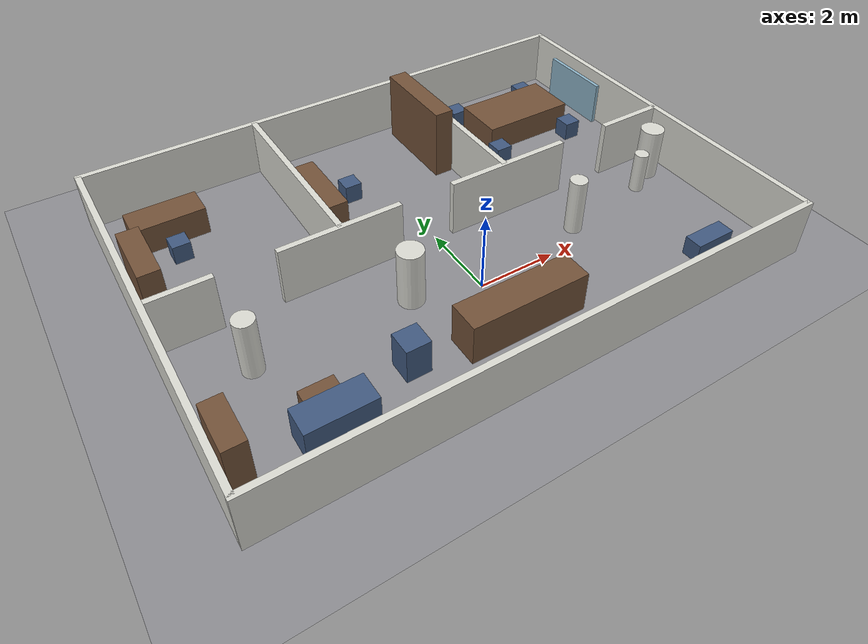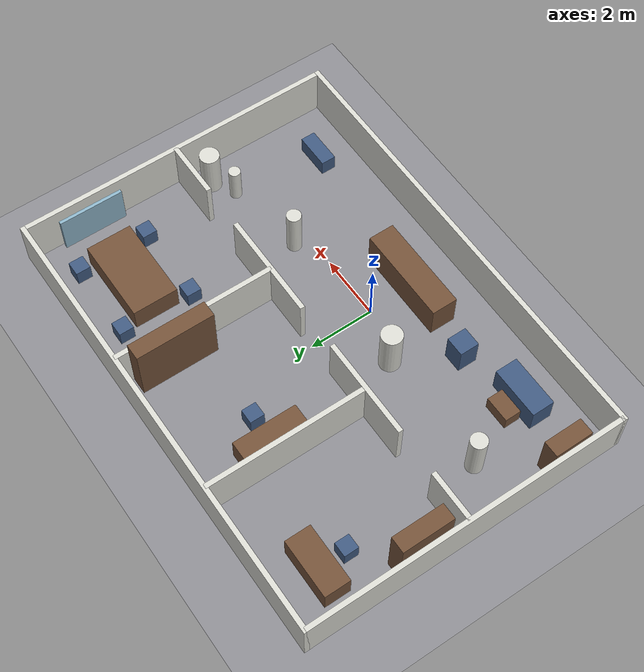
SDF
<sdf version='1.9'>
  <world name='default'>

    <plugin filename="gz-sim-physics-system" name="gz::sim::systems::Physics"/>
    <plugin filename="gz-sim-scene-broadcaster-system" name="gz::sim::systems::SceneBroadcaster"/>
    <plugin filename="gz-sim-user-commands-system" name="gz::sim::systems::UserCommands"/>
    <plugin filename="gz-sim-sensors-system" name="gz::sim::systems::Sensors">
      <render_engine>ogre2</render_engine>
    </plugin>
    <plugin filename="gz-sim-contact-system" name="gz::sim::systems::Contact"/>
    <plugin filename="gz-sim-imu-system" name="gz::sim::systems::Imu"/>

    <gravity>0 0 -9.8</gravity>
    <physics name='default_physics' type='ode'>
      <max_step_size>0.001</max_step_size>
      <real_time_factor>1.0</real_time_factor>
      <real_time_update_rate>1000</real_time_update_rate>
    </physics>

    <scene>
      <ambient>0.55 0.55 0.55 1</ambient>
      <background>0.75 0.80 0.85 1</background>
      <shadows>true</shadows>
    </scene>

    <light type='directional' name='sun'>
      <cast_shadows>true</cast_shadows>
      <pose>0 0 10 0 0 0</pose>
      <diffuse>0.9 0.9 0.9 1</diffuse>
      <specular>0.2 0.2 0.2 1</specular>
      <attenuation>
        <range>1000</range>
        <constant>0.9</constant>
        <linear>0.01</linear>
        <quadratic>0.001</quadratic>
      </attenuation>
      <direction>-0.4 0.3 -0.9</direction>
    </light>

    <model name='ground_plane'>
      <static>true</static>
      <link name='link'>
        <collision name='collision'>
          <geometry><plane><normal>0 0 1</normal><size>100 100</size></plane></geometry>
        </collision>
        <visual name='visual'>
          <geometry><plane><normal>0 0 1</normal><size>100 100</size></plane></geometry>
          <material>
            <ambient>0.40 0.40 0.42 1</ambient>
            <diffuse>0.55 0.55 0.57 1</diffuse>
            <specular>0.05 0.05 0.05 1</specular>
          </material>
        </visual>
      </link>
    </model>

    <model name='wall_south'>
      <static>true</static>
      <pose>0.0 -3.0 0.7500 0 0 0</pose>
      <link name='link'>
        <collision name='collision'>
          <geometry><box><size>14.15 0.15 1.5</size></box></geometry>
        </collision>
        <visual name='visual'>
          <geometry><box><size>14.15 0.15 1.5</size></box></geometry>
          <material>
            <ambient>0.425 0.425 0.410 1</ambient>
            <diffuse>0.850 0.850 0.820 1</diffuse>
            <specular>0.1 0.1 0.1 1</specular>
          </material>
        </visual>
      </link>
    </model>
    <model name='wall_north'>
      <static>true</static>
      <pose>0.0 7.0 0.7500 0 0 0</pose>
      <link name='link'>
        <collision name='collision'>
          <geometry><box><size>14.15 0.15 1.5</size></box></geometry>
        </collision>
        <visual name='visual'>
          <geometry><box><size>14.15 0.15 1.5</size></box></geometry>
          <material>
            <ambient>0.425 0.425 0.410 1</ambient>
            <diffuse>0.850 0.850 0.820 1</diffuse>
            <specular>0.1 0.1 0.1 1</specular>
          </material>
        </visual>
      </link>
    </model>
    <model name='wall_west'>
      <static>true</static>
      <pose>-7.0 2.0 0.7500 0 0 0</pose>
      <link name='link'>
        <collision name='collision'>
          <geometry><box><size>0.15 10.0 1.5</size></box></geometry>
        </collision>
        <visual name='visual'>
          <geometry><box><size>0.15 10.0 1.5</size></box></geometry>
          <material>
            <ambient>0.425 0.425 0.410 1</ambient>
            <diffuse>0.850 0.850 0.820 1</diffuse>
            <specular>0.1 0.1 0.1 1</specular>
          </material>
        </visual>
      </link>
    </model>
    <model name='wall_east'>
      <static>true</static>
      <pose>7.0 2.0 0.7500 0 0 0</pose>
      <link name='link'>
        <collision name='collision'>
          <geometry><box><size>0.15 10.0 1.5</size></box></geometry>
        </collision>
        <visual name='visual'>
          <geometry><box><size>0.15 10.0 1.5</size></box></geometry>
          <material>
            <ambient>0.425 0.425 0.410 1</ambient>
            <diffuse>0.850 0.850 0.820 1</diffuse>
            <specular>0.1 0.1 0.1 1</specular>
          </material>
        </visual>
      </link>
    </model>
    <model name='wall_partition_0'>
      <static>true</static>
      <pose>-6.225 2.0 0.7500 0 0 0</pose>
      <link name='link'>
        <collision name='collision'>
          <geometry><box><size>1.5499999999999998 0.15 1.5</size></box></geometry>
        </collision>
        <visual name='visual'>
          <geometry><box><size>1.5499999999999998 0.15 1.5</size></box></geometry>
          <material>
            <ambient>0.425 0.425 0.410 1</ambient>
            <diffuse>0.850 0.850 0.820 1</diffuse>
            <specular>0.1 0.1 0.1 1</specular>
          </material>
        </visual>
      </link>
    </model>
    <model name='wall_partition_1'>
      <static>true</static>
      <pose>-2.5 2.0 0.7500 0 0 0</pose>
      <link name='link'>
        <collision name='collision'>
          <geometry><box><size>3.0999999999999996 0.15 1.5</size></box></geometry>
        </collision>
        <visual name='visual'>
          <geometry><box><size>3.0999999999999996 0.15 1.5</size></box></geometry>
          <material>
            <ambient>0.425 0.425 0.410 1</ambient>
            <diffuse>0.850 0.850 0.820 1</diffuse>
            <specular>0.1 0.1 0.1 1</specular>
          </material>
        </visual>
      </link>
    </model>
    <model name='wall_partition_2'>
      <static>true</static>
      <pose>2.125 2.0 0.7500 0 0 0</pose>
      <link name='link'>
        <collision name='collision'>
          <geometry><box><size>3.3499999999999996 0.15 1.5</size></box></geometry>
        </collision>
        <visual name='visual'>
          <geometry><box><size>3.3499999999999996 0.15 1.5</size></box></geometry>
          <material>
            <ambient>0.425 0.425 0.410 1</ambient>
            <diffuse>0.850 0.850 0.820 1</diffuse>
            <specular>0.1 0.1 0.1 1</specular>
          </material>
        </visual>
      </link>
    </model>
    <model name='wall_partition_3'>
      <static>true</static>
      <pose>6.1 2.0 0.7500 0 0 0</pose>
      <link name='link'>
        <collision name='collision'>
          <geometry><box><size>1.7999999999999998 0.15 1.5</size></box></geometry>
        </collision>
        <visual name='visual'>
          <geometry><box><size>1.7999999999999998 0.15 1.5</size></box></geometry>
          <material>
            <ambient>0.425 0.425 0.410 1</ambient>
            <diffuse>0.850 0.850 0.820 1</diffuse>
            <specular>0.1 0.1 0.1 1</specular>
          </material>
        </visual>
      </link>
    </model>
    <model name='wall_div_office'>
      <static>true</static>
      <pose>-2.5 4.5 0.7500 0 0 0</pose>
      <link name='link'>
        <collision name='collision'>
          <geometry><box><size>0.15 5.0 1.5</size></box></geometry>
        </collision>
        <visual name='visual'>
          <geometry><box><size>0.15 5.0 1.5</size></box></geometry>
          <material>
            <ambient>0.425 0.425 0.410 1</ambient>
            <diffuse>0.850 0.850 0.820 1</diffuse>
            <specular>0.1 0.1 0.1 1</specular>
          </material>
        </visual>
      </link>
    </model>
    <model name='wall_div_meeting'>
      <static>true</static>
      <pose>2.0 4.5 0.7500 0 0 0</pose>
      <link name='link'>
        <collision name='collision'>
          <geometry><box><size>0.15 5.0 1.5</size></box></geometry>
        </collision>
        <visual name='visual'>
          <geometry><box><size>0.15 5.0 1.5</size></box></geometry>
          <material>
            <ambient>0.425 0.425 0.410 1</ambient>
            <diffuse>0.850 0.850 0.820 1</diffuse>
            <specular>0.1 0.1 0.1 1</specular>
          </material>
        </visual>
      </link>
    </model>
    <model name='reception_desk'>
      <static>true</static>
      <pose>0.0 -1.4 0.5250 0 0 0</pose>
      <link name='link'>
        <collision name='collision'>
          <geometry><box><size>3.0 0.8 1.05</size></box></geometry>
        </collision>
        <visual name='visual'>
          <geometry><box><size>3.0 0.8 1.05</size></box></geometry>
          <material>
            <ambient>0.225 0.160 0.110 1</ambient>
            <diffuse>0.450 0.320 0.220 1</diffuse>
            <specular>0.1 0.1 0.1 1</specular>
          </material>
        </visual>
      </link>
    </model>
    <model name='sofa_left'>
      <static>true</static>
      <pose>-4.6 -1.75 0.4000 0 0 0</pose>
      <link name='link'>
        <collision name='collision'>
          <geometry><box><size>1.6 0.7 0.8</size></box></geometry>
        </collision>
        <visual name='visual'>
          <geometry><box><size>1.6 0.7 0.8</size></box></geometry>
          <material>
            <ambient>0.125 0.175 0.250 1</ambient>
            <diffuse>0.250 0.350 0.500 1</diffuse>
            <specular>0.1 0.1 0.1 1</specular>
          </material>
        </visual>
      </link>
    </model>
    <model name='coffee_table'>
      <static>true</static>
      <pose>-4.6 -1.1 0.2250 0 0 0</pose>
      <link name='link'>
        <collision name='collision'>
          <geometry><box><size>0.8 0.5 0.45</size></box></geometry>
        </collision>
        <visual name='visual'>
          <geometry><box><size>0.8 0.5 0.45</size></box></geometry>
          <material>
            <ambient>0.225 0.160 0.110 1</ambient>
            <diffuse>0.450 0.320 0.220 1</diffuse>
            <specular>0.1 0.1 0.1 1</specular>
          </material>
        </visual>
      </link>
    </model>
    <model name='bench_right'>
      <static>true</static>
      <pose>5.3 -1.85 0.2500 0 0 0</pose>
      <link name='link'>
        <collision name='collision'>
          <geometry><box><size>1.1 0.45 0.5</size></box></geometry>
        </collision>
        <visual name='visual'>
          <geometry><box><size>1.1 0.45 0.5</size></box></geometry>
          <material>
            <ambient>0.125 0.175 0.250 1</ambient>
            <diffuse>0.250 0.350 0.500 1</diffuse>
            <specular>0.1 0.1 0.1 1</specular>
          </material>
        </visual>
      </link>
    </model>
    <model name='planter_mid'>
      <static>true</static>
      <pose>-2.6 -1.2 0.4500 0 0 0</pose>
      <link name='link'>
        <collision name='collision'>
          <geometry><box><size>0.6 0.6 0.9</size></box></geometry>
        </collision>
        <visual name='visual'>
          <geometry><box><size>0.6 0.6 0.9</size></box></geometry>
          <material>
            <ambient>0.125 0.175 0.250 1</ambient>
            <diffuse>0.250 0.350 0.500 1</diffuse>
            <specular>0.1 0.1 0.1 1</specular>
          </material>
        </visual>
      </link>
    </model>
    <model name='west_cabinet'>
      <static>true</static>
      <pose>-6.6 -1.5 0.7000 0 0 0</pose>
      <link name='link'>
        <collision name='collision'>
          <geometry><box><size>0.5 1.2 1.4</size></box></geometry>
        </collision>
        <visual name='visual'>
          <geometry><box><size>0.5 1.2 1.4</size></box></geometry>
          <material>
            <ambient>0.225 0.160 0.110 1</ambient>
            <diffuse>0.450 0.320 0.220 1</diffuse>
            <specular>0.1 0.1 0.1 1</specular>
          </material>
        </visual>
      </link>
    </model>
    <model name='office1_desk'>
      <static>true</static>
      <pose>-5.5 5.6 0.3750 0 0 0</pose>
      <link name='link'>
        <collision name='collision'>
          <geometry><box><size>1.8 0.8 0.75</size></box></geometry>
        </collision>
        <visual name='visual'>
          <geometry><box><size>1.8 0.8 0.75</size></box></geometry>
          <material>
            <ambient>0.225 0.160 0.110 1</ambient>
            <diffuse>0.450 0.320 0.220 1</diffuse>
            <specular>0.1 0.1 0.1 1</specular>
          </material>
        </visual>
      </link>
    </model>
    <model name='office1_cabinet'>
      <static>true</static>
      <pose>-6.6 3.2 0.9000 0 0 0</pose>
      <link name='link'>
        <collision name='collision'>
          <geometry><box><size>0.5 1.6 1.8</size></box></geometry>
        </collision>
        <visual name='visual'>
          <geometry><box><size>0.5 1.6 1.8</size></box></geometry>
          <material>
            <ambient>0.225 0.160 0.110 1</ambient>
            <diffuse>0.450 0.320 0.220 1</diffuse>
            <specular>0.1 0.1 0.1 1</specular>
          </material>
        </visual>
      </link>
    </model>
    <model name='office1_chair'>
      <static>true</static>
      <pose>-5.5 4.7 0.2500 0 0 0</pose>
      <link name='link'>
        <collision name='collision'>
          <geometry><box><size>0.45 0.45 0.5</size></box></geometry>
        </collision>
        <visual name='visual'>
          <geometry><box><size>0.45 0.45 0.5</size></box></geometry>
          <material>
            <ambient>0.125 0.175 0.250 1</ambient>
            <diffuse>0.250 0.350 0.500 1</diffuse>
            <specular>0.1 0.1 0.1 1</specular>
          </material>
        </visual>
      </link>
    </model>
    <model name='office2_desk'>
      <static>true</static>
      <pose>-1.95 4.6 0.3750 0 0 0</pose>
      <link name='link'>
        <collision name='collision'>
          <geometry><box><size>0.8 2.0 0.75</size></box></geometry>
        </collision>
        <visual name='visual'>
          <geometry><box><size>0.8 2.0 0.75</size></box></geometry>
          <material>
            <ambient>0.225 0.160 0.110 1</ambient>
            <diffuse>0.450 0.320 0.220 1</diffuse>
            <specular>0.1 0.1 0.1 1</specular>
          </material>
        </visual>
      </link>
    </model>
    <model name='office2_shelf'>
      <static>true</static>
      <pose>1.65 5.4 0.9500 0 0 0</pose>
      <link name='link'>
        <collision name='collision'>
          <geometry><box><size>0.5 2.4 1.9</size></box></geometry>
        </collision>
        <visual name='visual'>
          <geometry><box><size>0.5 2.4 1.9</size></box></geometry>
          <material>
            <ambient>0.225 0.160 0.110 1</ambient>
            <diffuse>0.450 0.320 0.220 1</diffuse>
            <specular>0.1 0.1 0.1 1</specular>
          </material>
        </visual>
      </link>
    </model>
    <model name='office2_chair'>
      <static>true</static>
      <pose>-1.0 4.6 0.2500 0 0 0</pose>
      <link name='link'>
        <collision name='collision'>
          <geometry><box><size>0.45 0.45 0.5</size></box></geometry>
        </collision>
        <visual name='visual'>
          <geometry><box><size>0.45 0.45 0.5</size></box></geometry>
          <material>
            <ambient>0.125 0.175 0.250 1</ambient>
            <diffuse>0.250 0.350 0.500 1</diffuse>
            <specular>0.1 0.1 0.1 1</specular>
          </material>
        </visual>
      </link>
    </model>
    <model name='meeting_table'>
      <static>true</static>
      <pose>4.6 5.0 0.3750 0 0 0</pose>
      <link name='link'>
        <collision name='collision'>
          <geometry><box><size>2.6 1.4 0.75</size></box></geometry>
        </collision>
        <visual name='visual'>
          <geometry><box><size>2.6 1.4 0.75</size></box></geometry>
          <material>
            <ambient>0.225 0.160 0.110 1</ambient>
            <diffuse>0.450 0.320 0.220 1</diffuse>
            <specular>0.1 0.1 0.1 1</specular>
          </material>
        </visual>
      </link>
    </model>
    <model name='meeting_chair_0'>
      <static>true</static>
      <pose>3.3 3.9 0.2500 0 0 0</pose>
      <link name='link'>
        <collision name='collision'>
          <geometry><box><size>0.45 0.45 0.5</size></box></geometry>
        </collision>
        <visual name='visual'>
          <geometry><box><size>0.45 0.45 0.5</size></box></geometry>
          <material>
            <ambient>0.125 0.175 0.250 1</ambient>
            <diffuse>0.250 0.350 0.500 1</diffuse>
            <specular>0.1 0.1 0.1 1</specular>
          </material>
        </visual>
      </link>
    </model>
    <model name='meeting_chair_1'>
      <static>true</static>
      <pose>5.7 3.9 0.2500 0 0 0</pose>
      <link name='link'>
        <collision name='collision'>
          <geometry><box><size>0.45 0.45 0.5</size></box></geometry>
        </collision>
        <visual name='visual'>
          <geometry><box><size>0.45 0.45 0.5</size></box></geometry>
          <material>
            <ambient>0.125 0.175 0.250 1</ambient>
            <diffuse>0.250 0.350 0.500 1</diffuse>
            <specular>0.1 0.1 0.1 1</specular>
          </material>
        </visual>
      </link>
    </model>
    <model name='meeting_chair_2'>
      <static>true</static>
      <pose>3.3 6.1 0.2500 0 0 0</pose>
      <link name='link'>
        <collision name='collision'>
          <geometry><box><size>0.45 0.45 0.5</size></box></geometry>
        </collision>
        <visual name='visual'>
          <geometry><box><size>0.45 0.45 0.5</size></box></geometry>
          <material>
            <ambient>0.125 0.175 0.250 1</ambient>
            <diffuse>0.250 0.350 0.500 1</diffuse>
            <specular>0.1 0.1 0.1 1</specular>
          </material>
        </visual>
      </link>
    </model>
    <model name='meeting_chair_3'>
      <static>true</static>
      <pose>5.7 6.1 0.2500 0 0 0</pose>
      <link name='link'>
        <collision name='collision'>
          <geometry><box><size>0.45 0.45 0.5</size></box></geometry>
        </collision>
        <visual name='visual'>
          <geometry><box><size>0.45 0.45 0.5</size></box></geometry>
          <material>
            <ambient>0.125 0.175 0.250 1</ambient>
            <diffuse>0.250 0.350 0.500 1</diffuse>
            <specular>0.1 0.1 0.1 1</specular>
          </material>
        </visual>
      </link>
    </model>
    <model name='meeting_whiteboard'>
      <static>true</static>
      <pose>6.8 5.0 0.6000 0 0 0</pose>
      <link name='link'>
        <collision name='collision'>
          <geometry><box><size>0.1 2.0 1.2</size></box></geometry>
        </collision>
        <visual name='visual'>
          <geometry><box><size>0.1 2.0 1.2</size></box></geometry>
          <material>
            <ambient>0.275 0.350 0.390 1</ambient>
            <diffuse>0.550 0.700 0.780 1</diffuse>
            <specular>0.1 0.1 0.1 1</specular>
          </material>
        </visual>
      </link>
    </model>
    <model name='pillar_a'>
      <static>true</static>
      <pose>-5.4 0.5 0.7500 0 0 0</pose>
      <link name='link'>
        <collision name='collision'>
          <geometry><cylinder><radius>0.25</radius><length>1.5</length></cylinder></geometry>
        </collision>
        <visual name='visual'>
          <geometry><cylinder><radius>0.25</radius><length>1.5</length></cylinder></geometry>
          <material>
            <ambient>0.425 0.425 0.410 1</ambient>
            <diffuse>0.850 0.850 0.820 1</diffuse>
            <specular>0.1 0.1 0.1 1</specular>
          </material>
        </visual>
      </link>
    </model>
    <model name='pillar_b'>
      <static>true</static>
      <pose>-1.6 0.5 0.7500 0 0 0</pose>
      <link name='link'>
        <collision name='collision'>
          <geometry><cylinder><radius>0.32</radius><length>1.5</length></cylinder></geometry>
        </collision>
        <visual name='visual'>
          <geometry><cylinder><radius>0.32</radius><length>1.5</length></cylinder></geometry>
          <material>
            <ambient>0.425 0.425 0.410 1</ambient>
            <diffuse>0.850 0.850 0.820 1</diffuse>
            <specular>0.1 0.1 0.1 1</specular>
          </material>
        </visual>
      </link>
    </model>
    <model name='pillar_c'>
      <static>true</static>
      <pose>3.1 0.5 0.7500 0 0 0</pose>
      <link name='link'>
        <collision name='collision'>
          <geometry><cylinder><radius>0.22</radius><length>1.5</length></cylinder></geometry>
        </collision>
        <visual name='visual'>
          <geometry><cylinder><radius>0.22</radius><length>1.5</length></cylinder></geometry>
          <material>
            <ambient>0.425 0.425 0.410 1</ambient>
            <diffuse>0.850 0.850 0.820 1</diffuse>
            <specular>0.1 0.1 0.1 1</specular>
          </material>
        </visual>
      </link>
    </model>
    <model name='plant_ne'>
      <static>true</static>
      <pose>6.3 1.3 0.7000 0 0 0</pose>
      <link name='link'>
        <collision name='collision'>
          <geometry><cylinder><radius>0.3</radius><length>1.4</length></cylinder></geometry>
        </collision>
        <visual name='visual'>
          <geometry><cylinder><radius>0.3</radius><length>1.4</length></cylinder></geometry>
          <material>
            <ambient>0.425 0.425 0.410 1</ambient>
            <diffuse>0.850 0.850 0.820 1</diffuse>
            <specular>0.1 0.1 0.1 1</specular>
          </material>
        </visual>
      </link>
    </model>
    <model name='cooler'>
      <static>true</static>
      <pose>5.6 0.9 0.5500 0 0 0</pose>
      <link name='link'>
        <collision name='collision'>
          <geometry><cylinder><radius>0.18</radius><length>1.1</length></cylinder></geometry>
        </collision>
        <visual name='visual'>
          <geometry><cylinder><radius>0.18</radius><length>1.1</length></cylinder></geometry>
          <material>
            <ambient>0.425 0.425 0.410 1</ambient>
            <diffuse>0.850 0.850 0.820 1</diffuse>
            <specular>0.1 0.1 0.1 1</specular>
          </material>
        </visual>
      </link>
    </model>

  </world>
</sdf>
